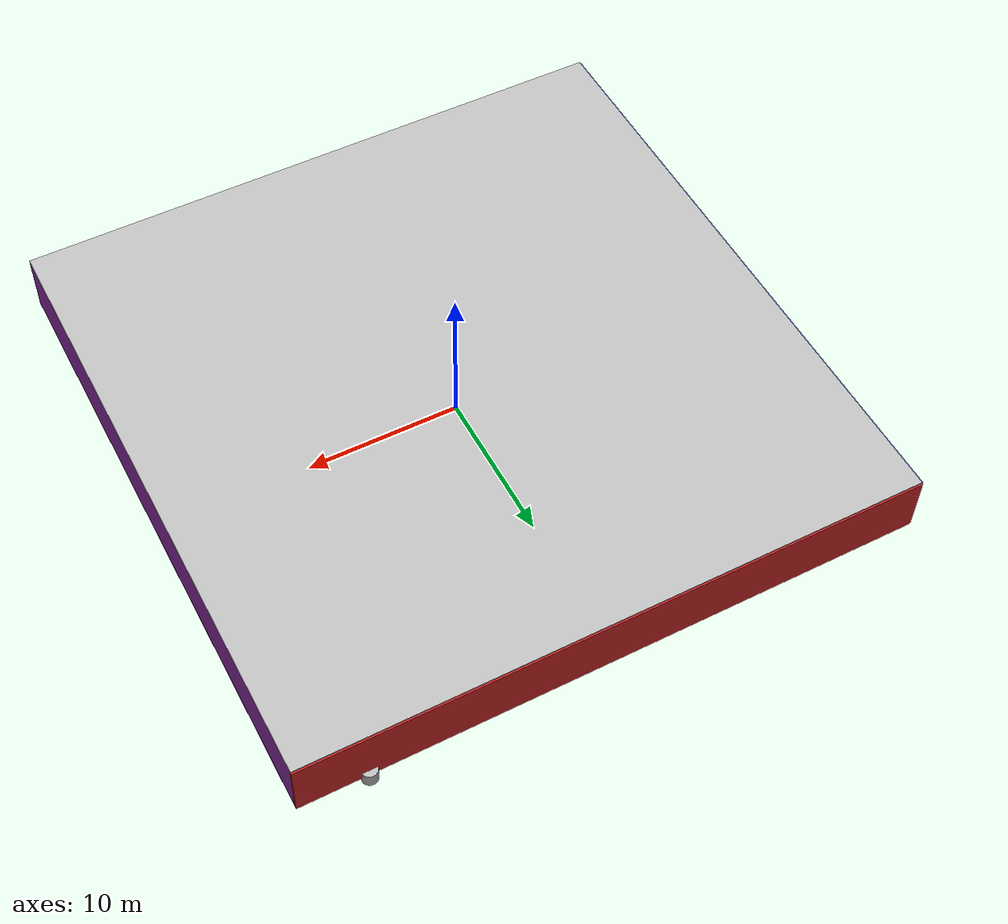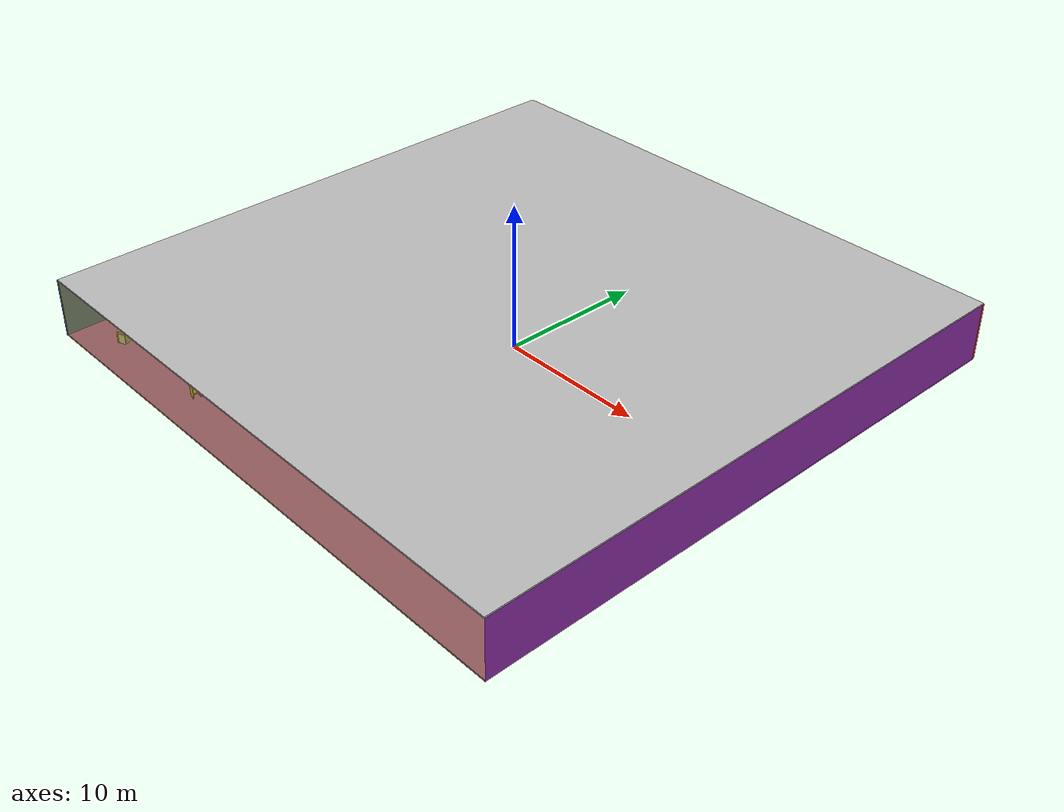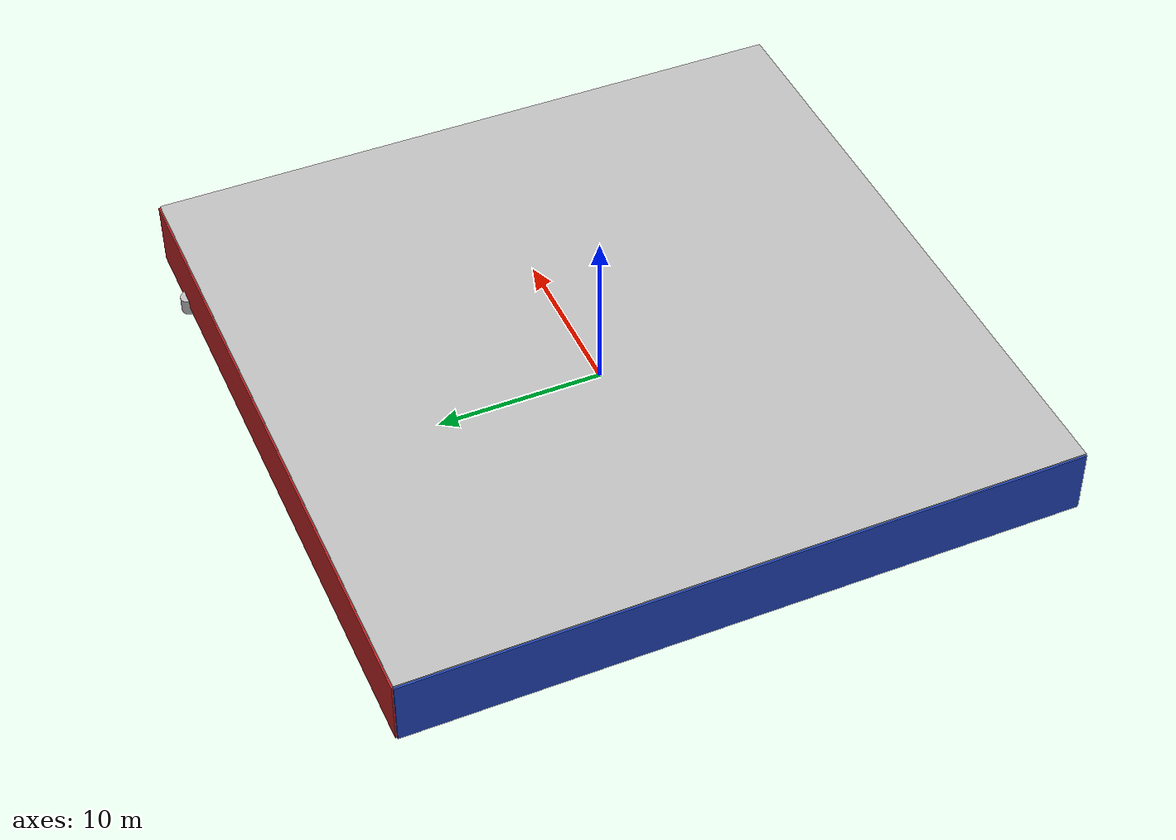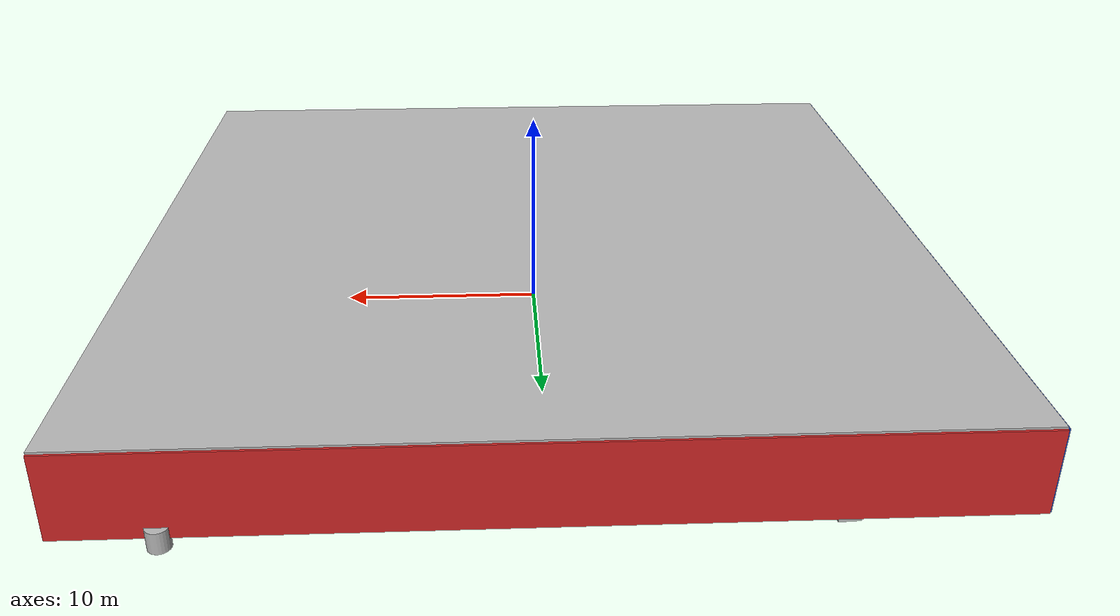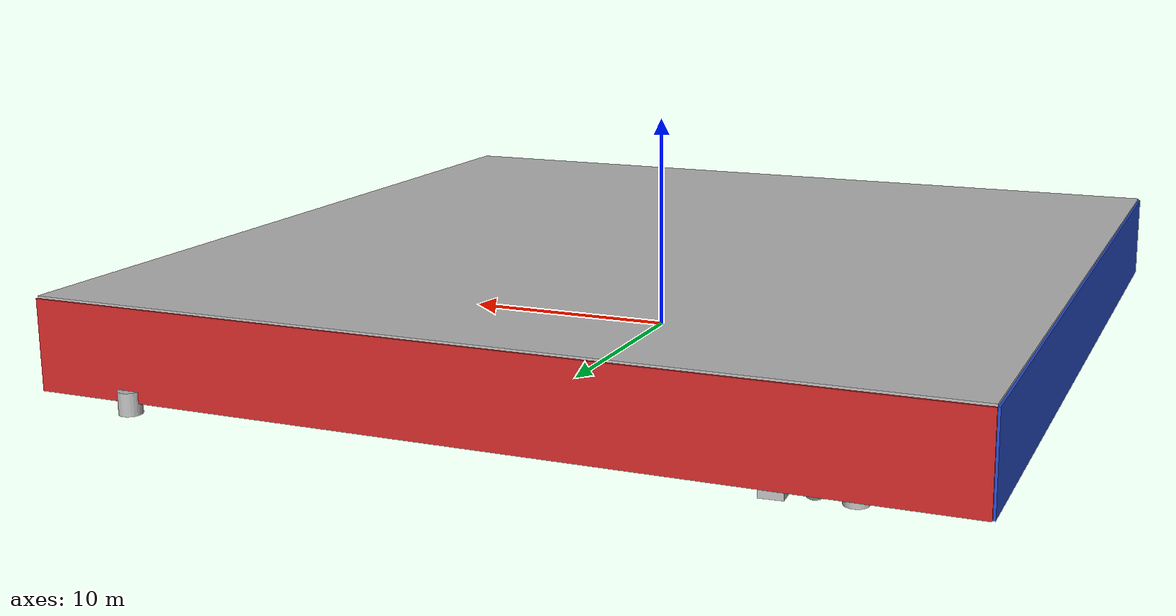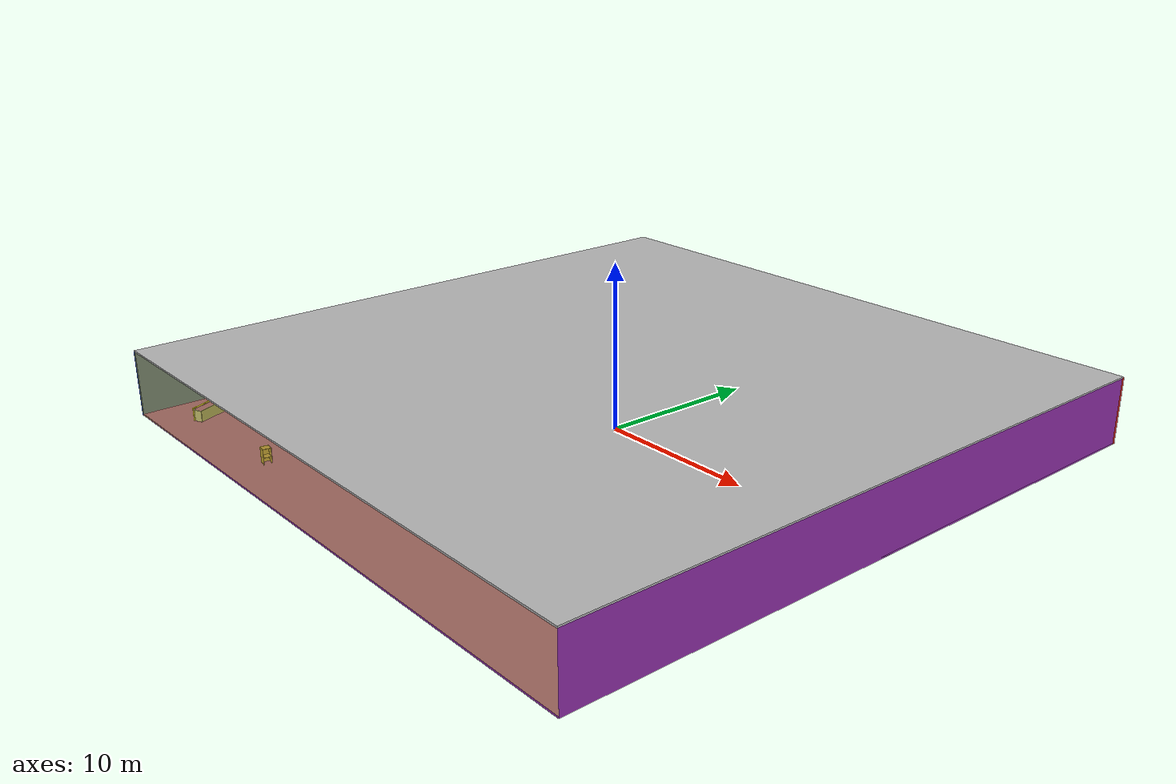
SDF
<sdf version="1.4">
 <world name="default">
  <physics type="ode">
   <max_step_size>0.001</max_step_size>
   <real_time_factor>1</real_time_factor>
   <real_time_update_rate>1000</real_time_update_rate>
   <gravity>0 0 -9.8</gravity>
  </physics>
  <scene><ambient>0.4 0.4 0.4 1</ambient><background>0.7 0.7 0.7 1</background><shadows>1</shadows></scene>
  <model name="Surrounding">
   <static>1</static>
   <link name="Ceiling">
    <collision name="Ceiling_Collision"><geometry><box><size>40 40 0.1</size></box></geometry></collision>
    <visual name="Ceiling_Visual">
     <geometry><box><size>40 40 0.1</size></box></geometry>
     <material>
      <script><uri>file://media/materials/scripts/gazebo.material</uri><name>Gazebo/CloudySky</name></script>
     </material>
    </visual>
    <pose>0 0 4.05 0 0 0</pose>
   </link>
   <link name="Wall_South">
    <collision name="Wall_South_Collision">
     <geometry><box><size>40 0 4</size></box></geometry>
     <pose>0 0 2 0 -0 0</pose>
    </collision>
    <visual name="Wall_South_Visual">
     <pose>0 0 2 0 -0 0</pose>
     <geometry><box><size>40 0 4</size></box></geometry>
     <material>
      <script>
       <uri>file://media/materials/scripts/gazebo.material</uri>
       <name>Gazebo/YellowTransparent</name>
      </script>
     </material>
    </visual>
    <velocity_decay><linear>0</linear><angular>0</angular></velocity_decay>
    <pose>0 -20 0 0 -0 0</pose>
   </link>
   <link name="Wall_East">
    <collision name="Wall_21_Collision">
     <geometry><box><size>40 0 4</size></box></geometry>
     <pose>0 0 2 0 -0 0</pose>
    </collision>
    <visual name="Wall_21_Visual">
     <pose>0 0 2 0 -0 0</pose>
     <geometry><box><size>40 0 4</size></box></geometry>
     <material>
      <script><uri>file://media/materials/scripts/gazebo.material</uri><name>Gazebo/Purple</name></script>
     </material>
    </visual>
    <velocity_decay><linear>0</linear><angular>0</angular></velocity_decay>
    <pose>20 0 0 0 -0 1.5708</pose>
   </link>
   <link name="Wall_North">
    <collision name="Wall_22_Collision">
     <geometry><box><size>40 0.2 4</size></box></geometry>
     <pose>0 0 2 0 -0 0</pose>
    </collision>
    <visual name="Wall_22_Visual">
     <pose>0 0 2 0 -0 0</pose>
     <geometry><box><size>40 0.2 4</size></box></geometry>
     <material>
      <script><uri>file://media/materials/scripts/gazebo.material</uri><name>Gazebo/RedBright</name></script>
     </material>
    </visual>
    <velocity_decay><linear>0</linear><angular>0</angular></velocity_decay>
    <pose>0 20 0 0 -0 0</pose>
   </link>
   <link name="Wall_West">
    <collision name="Wall_23_Collision">
     <geometry><box><size>40 0.2 4</size></box></geometry>
     <pose>0 0 2 0 -0 0</pose>
    </collision>
    <visual name="Wall_23_Visual">
     <pose>0 0 2 0 -0 0</pose>
     <geometry><box><size>40 0.2 4</size></box></geometry>
     <material>
      <script><uri>file://media/materials/scripts/gazebo.material</uri><name>Gazebo/BlueGlow</name></script>
     </material>
    </visual>
    <velocity_decay><linear>0</linear><angular>0</angular></velocity_decay>
    <pose>-20 0 0 0 0 -1.5708</pose>
   </link>
   <link name="Ground_link">
    <collision name="collision">
     <pose>0 0 .05 0 -0 0</pose>
     <geometry><box><size>40 40 0.1</size></box></geometry>
    </collision>
    <visual name="visual">
     <pose>0 0 .05 0 -0 0</pose>
     <geometry><box><size>40 40 0.1</size></box></geometry>
     <material>
      <script><uri>file://media/materials/scripts/gazebo.material</uri><name>Gazebo/PurpleGlow</name></script>
     </material>
    </visual>
   </link>
   <static>1</static>
  </model>
  <spherical_coordinates>
   <surface_model>EARTH_WGS84</surface_model>
   <latitude_deg>0</latitude_deg>
   <longitude_deg>0</longitude_deg>
   <elevation>0</elevation>
   <heading_deg>0</heading_deg>
  </spherical_coordinates>
  <light name="lightball_0" type="diffuse">
   <diffuse>0.8 0.8 0.8 1</diffuse>
   <specular>0.2 0.2 0.2 1</specular>
   <attenuation>
    <range>100</range>
    <constant>0.7</constant>
    <linear>0.01</linear>
    <quadratic>0.001</quadratic>
   </attenuation>
   <direction>-0.5 0.1 -0.9</direction>
   <pose>2.3680806383 13.25456974 3.28258932011 0 0 0</pose>
  </light>
  <light name="lightball_1" type="diffuse">
   <diffuse>0.8 0.8 0.8 1</diffuse>
   <specular>0.2 0.2 0.2 1</specular>
   <attenuation>
    <range>100</range>
    <constant>0.7</constant>
    <linear>0.01</linear>
    <quadratic>0.001</quadratic>
   </attenuation>
   <direction>-0.5 0.1 -0.9</direction>
   <pose>-12.4619188262 14.2728602984 1.42097340757 0 0 0</pose>
  </light>
  <light name="lightball_2" type="diffuse">
   <diffuse>0.8 0.8 0.8 1</diffuse>
   <specular>0.2 0.2 0.2 1</specular>
   <attenuation>
    <range>100</range>
    <constant>0.7</constant>
    <linear>0.01</linear>
    <quadratic>0.001</quadratic>
   </attenuation>
   <direction>-0.5 0.1 -0.9</direction>
   <pose>3.53329243719 17.0045088393 0.839786161533 0 0 0</pose>
  </light>
  <light name="lightball_3" type="diffuse">
   <diffuse>0.8 0.8 0.8 1</diffuse>
   <specular>0.2 0.2 0.2 1</specular>
   <attenuation>
    <range>100</range>
    <constant>0.7</constant>
    <linear>0.01</linear>
    <quadratic>0.001</quadratic>
   </attenuation>
   <direction>-0.5 0.1 -0.9</direction>
   <pose>4.46003190823 6.71521040151 1.4770549197 0 0 0</pose>
  </light>
  <light name="lightball_4" type="diffuse">
   <diffuse>0.8 0.8 0.8 1</diffuse>
   <specular>0.2 0.2 0.2 1</specular>
   <attenuation>
    <range>100</range>
    <constant>0.7</constant>
    <linear>0.01</linear>
    <quadratic>0.001</quadratic>
   </attenuation>
   <direction>-0.5 0.1 -0.9</direction>
   <pose>-1.52237253302 -12.668782973 3.78804528846 0 0 0</pose>
  </light>
  <light name="lightball_5" type="diffuse">
   <diffuse>0.8 0.8 0.8 1</diffuse>
   <specular>0.2 0.2 0.2 1</specular>
   <attenuation>
    <range>100</range>
    <constant>0.7</constant>
    <linear>0.01</linear>
    <quadratic>0.001</quadratic>
   </attenuation>
   <direction>-0.5 0.1 -0.9</direction>
   <pose>19.5532098789 -17.9925208827 3.63445920455 0 0 0</pose>
  </light>
  <light name="lightball_6" type="diffuse">
   <diffuse>0.8 0.8 0.8 1</diffuse>
   <specular>0.2 0.2 0.2 1</specular>
   <attenuation>
    <range>100</range>
    <constant>0.7</constant>
    <linear>0.01</linear>
    <quadratic>0.001</quadratic>
   </attenuation>
   <direction>-0.5 0.1 -0.9</direction>
   <pose>7.50394575926 -16.2910537466 2.16013821195 0 0 0</pose>
  </light>
  <include>
   <uri>model://robocup_3Dsim_goal</uri>
   <pose>-17.3830038009 -17.1447240154 0 0 0 0.408284133743</pose>
  </include>
  <include><uri>model://table</uri><pose>-14.6611592996 -2.42940828972 0 0 0 0.0298406029352</pose></include>
  <include><uri>model://table</uri><pose>-13.3455239089 -0.00770412714587 0 0 0 0.243479484996</pose></include>
  <include><uri>model://table</uri><pose>-14.1632250558 6.28034266906 0 0 0 2.41830589447</pose></include>
  <include>
   <uri>model://textured_shapes</uri>
   <pose>-13.5149307917 19.0172129233 0 0 0 1.63304790559</pose>
  </include>
  <include>
   <uri>model://robocup_3Dsim_goal</uri>
   <pose>-12.1207725691 -4.88102672023 0 0 0 1.31043998716</pose>
  </include>
  <include><uri>model://cabinet</uri><pose>-11.2579899916 2.61620515225 0 0 0 2.20584446476</pose></include>
  <include>
   <uri>model://textured_shapes</uri>
   <pose>-12.3957061224 9.12301751694 0 0 0 0.336019487137</pose>
  </include>
  <include>
   <uri>model://robocup_3Dsim_goal</uri>
   <pose>-11.1250148575 11.3765056965 0 0 0 3.01027060617</pose>
  </include>
  <include>
   <uri>model://construction_cone</uri>
   <pose>-11.6262486617 18.2903855165 0 0 0 2.90095346133</pose>
  </include>
  <include><uri>model://cabinet</uri><pose>-8.69129939663 -17.6541229551 0 0 0 2.9926217809</pose></include>
  <include><uri>model://table</uri><pose>-7.35143254027 17.3669502038 0 0 0 2.64467289025</pose></include>
  <include><uri>model://cabinet</uri><pose>-6.17207267453 0.132251248887 0 0 0 1.89435526141</pose></include>
  <include><uri>model://table</uri><pose>-5.85517348484 13.173071509 0 0 0 0.563915323009</pose></include>
  <include><uri>model://cabinet</uri><pose>-4.76827036903 19.0483267955 0 0 0 0.374984321732</pose></include>
  <include><uri>model://cabinet</uri><pose>-2.29724251459 -6.08792891467 0 0 0 2.22757680534</pose></include>
  <include>
   <uri>model://robocup_3Dsim_goal</uri>
   <pose>-1.45612763998 8.67492135323 0 0 0 1.33984632007</pose>
  </include>
  <include><uri>model://cabinet</uri><pose>-2.05162654386 13.6111771949 0 0 0 2.99121766915</pose></include>
  <include>
   <uri>model://robocup_3Dsim_goal</uri>
   <pose>-0.0528156868397 -12.5462862194 0 0 0 1.08025744554</pose>
  </include>
  <include>
   <uri>model://construction_cone</uri>
   <pose>3.75913830335 -15.1187701401 0 0 0 2.65438404983</pose>
  </include>
  <include>
   <uri>model://textured_shapes</uri>
   <pose>4.41363968332 3.04478413374 0 0 0 2.40249877047</pose>
  </include>
  <include>
   <uri>model://textured_shapes</uri>
   <pose>7.2783314879 14.482025925 0 0 0 1.22373640406</pose>
  </include>
  <include><uri>model://cabinet</uri><pose>9.97220850011 -5.47347458871 0 0 0 0.549020066988</pose></include>
  <include><uri>model://cabinet</uri><pose>9.62095242403 2.3786436599 0 0 0 2.35888407864</pose></include>
  <include><uri>model://table</uri><pose>16.5083225773 -1.69347428319 0 0 0 1.17337480493</pose></include>
  <include><uri>model://cabinet</uri><pose>15.885840708 10.557728605 0 0 0 1.25781907418</pose></include>
  <include>
   <uri>model://textured_shapes</uri>
   <pose>16.190279651 18.6249871971 0 0 0 0.418875458104</pose>
  </include>
 </world>
</sdf>

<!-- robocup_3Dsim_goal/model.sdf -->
<sdf version="1.5">
  <model name="robocup_3d_goal">
    <static>true</static>
    <link name="left_post">
      <pose>0 1.05 0.45 0 0 0</pose>
      <collision name="collision">
        <geometry>
          <cylinder>
            <radius>0.05</radius>
            <length>0.9</length>
          </cylinder>
        </geometry>
      </collision>
      <visual name="visual">
        <geometry>
          <cylinder>
            <radius>0.05</radius>
            <length>0.9</length>
          </cylinder>
        </geometry>
        <material>
          <script>
            <uri>file://media/materials/scripts/gazebo.material</uri>
            <name>Gazebo/ZincYellow</name>
          </script>
        </material>
      </visual>
    </link>
    <link name="left_support_horiz_lower">
      <pose>0.30 1.05 0.01 0 0 0</pose>
      <collision name="collision">
        <geometry>
          <box>
            <size>0.50 0.02 0.02</size>
          </box>
        </geometry>
      </collision>
      <visual name="visual">
        <geometry>
          <box>
            <size>0.50 0.02 0.02</size>
          </box>
        </geometry>
        <material>
          <script>
            <uri>file://media/materials/scripts/gazebo.material</uri>
            <name>Gazebo/White</name>
          </script>
        </material>
      </visual>
    </link>
    <link name="left_support_horiz_upper">
      <pose>0.30 1.05 0.79 0 0 0</pose>
      <collision name="collision">
        <geometry>
          <box>
            <size>0.50 0.02 0.02</size>
          </box>
        </geometry>
      </collision>
      <visual name="visual">
        <geometry>
          <box>
            <size>0.50 0.02 0.02</size>
          </box>
        </geometry>
        <material>
          <script>
            <uri>file://media/materials/scripts/gazebo.material</uri>
            <name>Gazebo/White</name>
          </script>
        </material>
      </visual>
    </link>
    <link name="left_support_vertical">
      <pose>0.56 1.05 0.4 0 1.5708 0</pose>
      <collision name="collision">
        <geometry>
          <box>
            <size>0.80 0.02 0.02</size>
          </box>
        </geometry>
      </collision>
      <visual name="visual">
        <geometry>
          <box>
            <size>0.80 0.02 0.02</size>
          </box>
        </geometry>
        <material>
          <script>
            <uri>file://media/materials/scripts/gazebo.material</uri>
            <name>Gazebo/White</name>
          </script>
        </material>
      </visual>
    </link>
    <link name="right_support_horiz_lower">
      <pose>0.30 -1.05 0.01 0 0 0</pose>
      <collision name="collision">
        <geometry>
          <box>
            <size>0.50 0.02 0.02</size>
          </box>
        </geometry>
      </collision>
      <visual name="visual">
        <geometry>
          <box>
            <size>0.50 0.02 0.02</size>
          </box>
        </geometry>
        <material>
          <script>
            <uri>file://media/materials/scripts/gazebo.material</uri>
            <name>Gazebo/White</name>
          </script>
        </material>
      </visual>
    </link>
    <link name="right_support_horiz_upper">
      <pose>0.30 -1.05 0.79 0 0 0</pose>
      <collision name="collision">
        <geometry>
          <box>
            <size>0.50 0.02 0.02</size>
          </box>
        </geometry>
      </collision>
      <visual name="visual">
        <geometry>
          <box>
            <size>0.50 0.02 0.02</size>
          </box>
        </geometry>
        <material>
          <script>
            <uri>file://media/materials/scripts/gazebo.material</uri>
            <name>Gazebo/White</name>
          </script>
        </material>
      </visual>
    </link>
    <link name="right_support_vertical">
      <pose>0.56 -1.05 0.4 0 1.5708 0</pose>
      <collision name="collision">
        <geometry>
          <box>
            <size>0.80 0.02 0.02</size>
          </box>
        </geometry>
      </collision>
      <visual name="visual">
        <geometry>
          <box>
            <size>0.80 0.02 0.02</size>
          </box>
        </geometry>
        <material>
          <script>
            <uri>file://media/materials/scripts/gazebo.material</uri>
            <name>Gazebo/White</name>
          </script>
        </material>
      </visual>
    </link>
    <link name="center_support_horiz_lower">
      <pose>0.56 0 0.01 0 1.5708 0</pose>
      <collision name="collision">
        <geometry>
          <box>
            <size>0.02 2.08 0.02</size>
          </box>
        </geometry>
      </collision>
      <visual name="visual">
        <geometry>
          <box>
            <size>0.02 2.08 0.02</size>
          </box>
        </geometry>
        <material>
          <script>
            <uri>file://media/materials/scripts/gazebo.material</uri>
            <name>Gazebo/White</name>
          </script>
        </material>
      </visual>
    </link>
    <link name="center_support_horiz_upper">
      <pose>0.56 0 0.79 0 1.5708 0</pose>
      <collision name="collision">
        <geometry>
          <box>
            <size>0.02 2.08 0.02</size>
          </box>
        </geometry>
      </collision>
      <visual name="visual">
        <geometry>
          <box>
            <size>0.02 2.08 0.02</size>
          </box>
        </geometry>
        <material>
          <script>
            <uri>file://media/materials/scripts/gazebo.material</uri>
            <name>Gazebo/White</name>
          </script>
        </material>
      </visual>
    </link>
    <link name="right_post">
      <pose>0 -1.05 0.45 0 0 0</pose>
      <collision name="collision">
        <geometry>
          <cylinder>
            <radius>0.05</radius>
            <length>0.9</length>
          </cylinder>
        </geometry>
      </collision>
      <visual name="visual">
        <geometry>
          <cylinder>
            <radius>0.05</radius>
            <length>0.9</length>
          </cylinder>
        </geometry>
        <material>
          <script>
            <uri>file://media/materials/scripts/gazebo.material</uri>
            <name>Gazebo/ZincYellow</name>
          </script>
        </material>
      </visual>
    </link>
    <link name="crossbar">
      <pose>0 0 0.85 1.57 1.57 0</pose>
      <collision name="collision">
        <geometry>
          <cylinder>
            <radius>0.05</radius>
            <length>2.0</length>
          </cylinder>
        </geometry>
      </collision>
      <visual name="visual">
        <geometry>
          <cylinder>
            <radius>0.05</radius>
            <length>2.0</length>
          </cylinder>
        </geometry>
        <material>
          <script>
            <uri>file://media/materials/scripts/gazebo.material</uri>
            <name>Gazebo/ZincYellow</name>
          </script>
        </material>
      </visual>
    </link>
    <link name="center_net">
      <pose>0.56 0 0.40 0 0 0</pose>
      <collision name="collision">
        <geometry>
          <box>
            <size>0.01 2.1 0.80</size>
          </box>
        </geometry>
      </collision>
      <visual name="visual">
        <geometry>
          <box>
            <size>0.01 2.1 0.80</size>
          </box>
        </geometry>
        <material>
          <script>
            <uri>model://../model_source/models/robocup09_spl_field/materials/scripts/</uri>
            <uri>model://../model_source/models/robocup09_spl_field/materials/textures/</uri>
            <name>RoboCup/Net</name>
          </script>
        </material>
      </visual>
    </link>
    <link name="left_net">
      <pose>0.30 1.05 0.40 0 0 0</pose>
      <collision name="collision">
        <geometry>
          <box>
            <size>0.50 0.01 0.76</size>
          </box>
        </geometry>
      </collision>
      <visual name="visual">
        <geometry>
          <box>
            <size>0.50 0.01 0.76</size>
          </box>
        </geometry>
        <material>
          <script>
            <uri>model://../model_source/models/robocup09_spl_field/materials/scripts/</uri>
            <uri>model://../model_source/models/robocup09_spl_field/materials/textures/</uri>
            <name>RoboCup/Net</name>
          </script>
        </material>
      </visual>
    </link>
    <link name="right_net">
      <pose>0.30 -1.05 0.40 0 0 0</pose>
      <collision name="collision">
        <geometry>
          <box>
            <size>0.50 0.01 0.76</size>
          </box>
        </geometry>
      </collision>
      <visual name="visual">
        <geometry>
          <box>
            <size>0.50 0.01 0.76</size>
          </box>
        </geometry>
        <material>
          <script>
            <uri>model://../model_source/models/robocup09_spl_field/materials/scripts/</uri>
            <uri>model://../model_source/models/robocup09_spl_field/materials/textures/</uri>
            <name>RoboCup/Net</name>
          </script>
        </material>
      </visual>
    </link>
  </model>
</sdf>

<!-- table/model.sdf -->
<sdf version="1.5">
  <model name="table">
    <static>true</static>
    <link name="link">
      <collision name="surface">
        <pose>0 0 1.0 0 0 0</pose>
        <geometry>
          <box>
            <size>1.5 0.8 0.03</size>
          </box>
        </geometry>
        <surface>
          <friction>
            <ode>
              <mu>0.6</mu>
              <mu2>0.6</mu2>
            </ode>
          </friction>
        </surface>
      </collision>
      <visual name="visual1">
        <pose>0 0 1.0 0 0 0</pose>
        <geometry>
          <box>
            <size>1.5 0.8 0.03</size>
          </box>
        </geometry>
        <material>
          <script>
            <uri>model://media/materials/scripts/gazebo.material</uri>
            <name>Gazebo/Wood</name>
          </script>
        </material>
      </visual>
      <collision name="front_left_leg">
        <pose>0.68 0.38 0.5 0 0 0</pose>
        <geometry>
          <cylinder>
            <radius>0.02</radius>
            <length>1.0</length>
          </cylinder>
        </geometry>
      </collision>
      <visual name="front_left_leg">
        <pose>0.68 0.38 0.5 0 0 0</pose>
        <geometry>
          <cylinder>
            <radius>0.02</radius>
            <length>1.0</length>
          </cylinder>
        </geometry>
        <material>
          <script>
            <uri>model://media/materials/scripts/gazebo.material</uri>
            <name>Gazebo/Grey</name>
          </script>
        </material>
      </visual>
      <collision name="front_right_leg">
        <pose>0.68 -0.38 0.5 0 0 0</pose>
        <geometry>
          <cylinder>
            <radius>0.02</radius>
            <length>1.0</length>
          </cylinder>
        </geometry>
      </collision>
      <visual name="front_right_leg">
        <pose>0.68 -0.38 0.5 0 0 0</pose>
        <geometry>
          <cylinder>
            <radius>0.02</radius>
            <length>1.0</length>
          </cylinder>
        </geometry>
        <material>
          <script>
            <uri>model://media/materials/scripts/gazebo.material</uri>
            <name>Gazebo/Grey</name>
          </script>
        </material>
      </visual>
      <collision name="back_right_leg">
        <pose>-0.68 -0.38 0.5 0 0 0</pose>
        <geometry>
          <cylinder>
            <radius>0.02</radius>
            <length>1.0</length>
          </cylinder>
        </geometry>
      </collision>
      <visual name="back_right_leg">
        <pose>-0.68 -0.38 0.5 0 0 0</pose>
        <geometry>
          <cylinder>
            <radius>0.02</radius>
            <length>1.0</length>
          </cylinder>
        </geometry>
        <material>
          <script>
            <uri>model://media/materials/scripts/gazebo.material</uri>
            <name>Gazebo/Grey</name>
          </script>
        </material>
      </visual>
      <collision name="back_left_leg">
        <pose>-0.68 0.38 0.5 0 0 0</pose>
        <geometry>
          <cylinder>
            <radius>0.02</radius>
            <length>1.0</length>
          </cylinder>
        </geometry>
      </collision>
      <visual name="back_left_leg">
        <pose>-0.68 0.38 0.5 0 0 0</pose>
        <geometry>
          <cylinder>
            <radius>0.02</radius>
            <length>1.0</length>
          </cylinder>
        </geometry>
        <material>
          <script>
            <uri>model://media/materials/scripts/gazebo.material</uri>
            <name>Gazebo/Grey</name>
          </script>
        </material>
      </visual>
    </link>
  </model>
</sdf>

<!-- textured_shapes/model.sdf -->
<sdf version="1.6">
  <model name="textured_shapes">
    <pose>0 0 0.5 0 0 0</pose>
    <link name="box">
      <pose>0 -1.5 0 0 0 0</pose>
      <collision name="collision">
        <geometry>
          <box>
            <size>1 1 1</size>
          </box>
        </geometry>
      </collision>
      <visual name="visual">
        <geometry>
          <box>
            <size>1 1 1</size>
          </box>
        </geometry>
        <material>
          <script>
            <uri>model://../model_source/models/textured_shapes/materials/scripts</uri>
            <uri>model://../model_source/models/textured_shapes/materials/textures</uri>
            <name>TexturedShape/Squares</name>
          </script>
        </material>
      </visual>
    </link>
    <link name="sphere">
      <collision name="collision">
        <geometry>
          <sphere>
            <radius>0.5</radius>
          </sphere>
        </geometry>
      </collision>
      <visual name="visual">
        <geometry>
          <sphere>
            <radius>0.5</radius>
          </sphere>
        </geometry>
        <material>
          <script>
            <uri>model://../model_source/models/textured_shapes/materials/scripts</uri>
            <uri>model://../model_source/models/textured_shapes/materials/textures</uri>
            <name>TexturedShape/Squares</name>
          </script>
        </material>
      </visual>
    </link>
    <link name="cylinder">
      <pose>0 1.5 0 0 0 0</pose>
      <collision name="collision">
        <geometry>
          <cylinder>
            <radius>0.5</radius>
            <length>1</length>
          </cylinder>
        </geometry>
      </collision>
      <visual name="visual">
        <geometry>
          <cylinder>
            <radius>0.5</radius>
            <length>1</length>
          </cylinder>
        </geometry>
        <material>
          <script>
            <uri>model://../model_source/models/textured_shapes/materials/scripts</uri>
            <uri>model://../model_source/models/textured_shapes/materials/textures</uri>
            <name>TexturedShape/Squares</name>
          </script>
        </material>
      </visual>
    </link>
  </model>
</sdf>

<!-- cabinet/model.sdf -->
<sdf version="1.5">
  <model name="cabinet">
    <static>true</static>
    <link name="cabinet_bottom_plate">
      <inertial>
        <pose>0 0 -1 0 0 0</pose>
        <inertia>
          <ixx>2.050000</ixx>
          <ixy>0</ixy>
          <ixz>0</ixz>
          <iyy>2.050000</iyy>
          <iyz>0</iyz>
          <izz>2.050000</izz>
        </inertia>
        <mass>25.000000</mass>
      </inertial>
      <collision name="cabinet_bottom_plate_geom">
        <pose>0 0 0.010000 0 0 0</pose>
        <geometry>
          <box>
            <size>0.450000 0.450000 0.020000</size>
          </box>
        </geometry>
      </collision>
      <visual name="cabinet_bottom_plate_geom_visual">
        <pose>0 0 0.010000 0 0 0</pose>
        <geometry>
          <box>
            <size>0.450000 0.450000 0.020000</size>
          </box>
        </geometry>
        <material>
          <script>
            <uri>model://media/materials/scripts/gazebo.material</uri>
            <name>Gazebo/Wood</name>
          </script>
        </material>
      </visual>
      <collision name="cabinet_bottom_plate_geom_cabinet_back_plate">
        <pose>0.235000 0 0.510000 0 0 0</pose>
        <geometry>
          <box>
            <size>0.020000 0.450000 1.020000</size>
          </box>
        </geometry>
      </collision>
      <visual name="cabinet_bottom_plate_geom_cabinet_back_plate_visual">
        <pose>0.235000 0 0.510000 0 0 0</pose>
        <geometry>
          <box>
            <size>0.020000 0.450000 1.020000</size>
          </box>
        </geometry>
        <material>
          <script>
            <uri>model://media/materials/scripts/gazebo.material</uri>
            <name>Gazebo/Wood</name>
          </script>
        </material>
      </visual>
      <collision name="cabinet_bottom_plate_geom_cabinet_left_plate">
        <pose>0 0.235000 0.510000 0 0 0</pose>
        <geometry>
          <box>
            <size>0.450000 0.020000 1.020000</size>
          </box>
        </geometry>
      </collision>
      <visual name="cabinet_bottom_plate_geom_cabinet_left_plate_visual">
        <pose>0 0.235000 0.510000 0 0 0</pose>
        <geometry>
          <box>
            <size>0.450000 0.020000 1.020000</size>
          </box>
        </geometry>
        <material>
          <script>
            <uri>model://media/materials/scripts/gazebo.material</uri>
            <name>Gazebo/Wood</name>
          </script>
        </material>
      </visual>
      <collision name="cabinet_bottom_plate_geom_cabinet_middle_plate">
        <pose>0 0 0.510000 0 0 0</pose>
        <geometry>
          <box>
            <size>0.450000 0.450000 0.020000</size>
          </box>
        </geometry>
      </collision>
      <visual name="cabinet_bottom_plate_geom_cabinet_middle_plate_visual">
        <pose>0 0 0.510000 0 0 0</pose>
        <geometry>
          <box>
            <size>0.450000 0.450000 0.020000</size>
          </box>
        </geometry>
        <material>
          <script>
            <uri>model://media/materials/scripts/gazebo.material</uri>
            <name>Gazebo/Wood</name>
          </script>
        </material>
      </visual>
      <collision name="cabinet_bottom_plate_geom_cabinet_right_plate">
        <pose>0 -0.235000 0.510000 0 0 0</pose>
        <geometry>
          <box>
            <size>0.450000 0.020000 1.020000</size>
          </box>
        </geometry>
      </collision>
      <visual name="cabinet_bottom_plate_geom_cabinet_right_plate_visual">
        <pose>0 -0.235000 0.510000 0 0 0</pose>
        <geometry>
          <box>
            <size>0.450000 0.020000 1.020000</size>
          </box>
        </geometry>
        <material>
          <script>
            <uri>model://media/materials/scripts/gazebo.material</uri>
            <name>Gazebo/Wood</name>
          </script>
        </material>
      </visual>
      <collision name="cabinet_bottom_plate_geom_cabinet_top_plate">
        <pose>0 0 1.010000 0 0 0</pose>
        <geometry>
          <box>
            <size>0.450000 0.450000 0.020000</size>
          </box>
        </geometry>
      </collision>
      <visual name="cabinet_bottom_plate_geom_cabinet_top_plate_visual">
        <pose>0 0 1.010000 0 0 0</pose>
        <geometry>
          <box>
            <size>0.450000 0.450000 0.020000</size>
          </box>
        </geometry>
        <material>
          <script>
            <uri>model://media/materials/scripts/gazebo.material</uri>
            <name>Gazebo/Wood</name>
          </script>
        </material>
      </visual>
    </link>
  </model>
</sdf>

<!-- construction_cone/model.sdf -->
<sdf version="1.5">
  <model name="Construction Cone">
    <link name="link">
      <collision name="collision">
        <geometry>
          <mesh>
            <scale>10 10 10</scale>
            <uri>file://isr-testbed/construction_cone/meshes/construction_cone.dae</uri>
          </mesh>
        </geometry>
      </collision>
      <visual name="visual">
        <geometry>
          <mesh>
            <scale>10 10 10</scale>
            <uri>file://isr-testbed/construction_cone/meshes/construction_cone.dae</uri>
          </mesh>
        </geometry>
      </visual>
    </link>
  </model>
</sdf>
